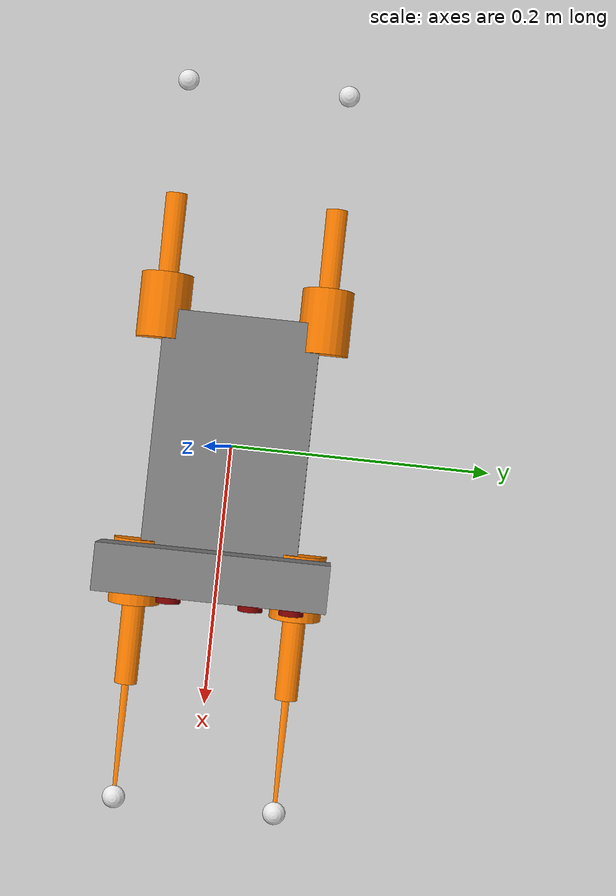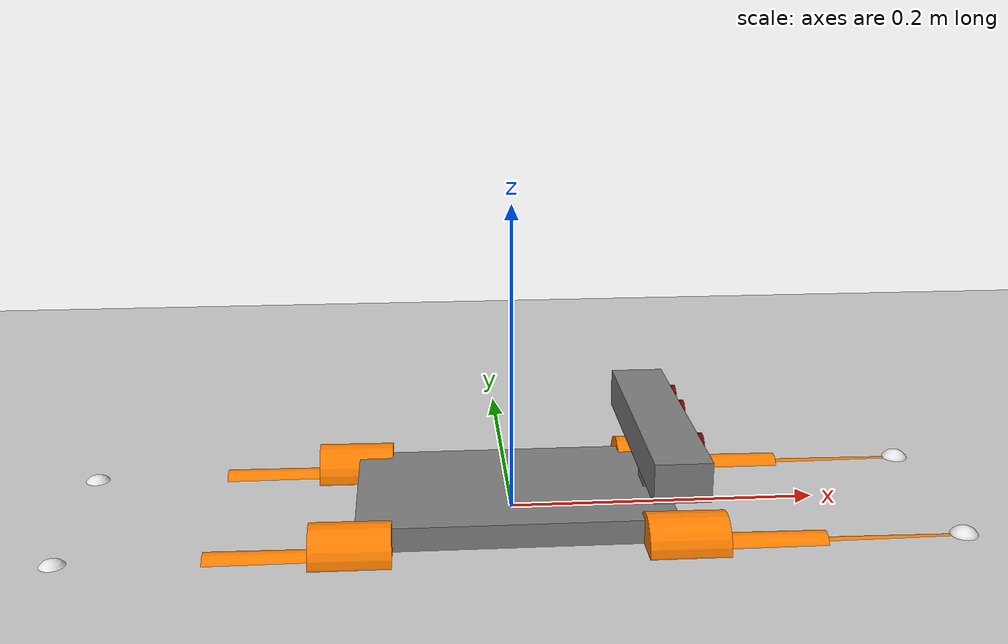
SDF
<?xml version="1.0" ?>
<sdf version="1.5">
  <world name="default">
  <physics type="ode">
    <max_step_size>0.001</max_step_size>
    <real_time_factor>1</real_time_factor>
    <real_time_update_rate>1000</real_time_update_rate>
    <max_contacts>1000</max_contacts>
    <simbody>
      <min_step_size>0.0001</min_step_size>
      <accuracy>0.001</accuracy>
      <max_transient_velocity>0.01</max_transient_velocity>
      <contact>
        <stiffness>1e8</stiffness>
        <dissipation>100</dissipation>
        <plastic_coef_restitution>0.5</plastic_coef_restitution>
        <plastic_impact_velocity>0.5</plastic_impact_velocity>
        <static_friction>0.1</static_friction>
        <dynamic_friction>0.1</dynamic_friction>
        <viscous_friction>0</viscous_friction>
        <override_impact_capture_velocity>0.001</override_impact_capture_velocity>
        <override_stiction_transition_velocity>0.001</override_stiction_transition_velocity>
      </contact>
    </simbody>
    <bullet>
      <solver>
        <type>sequential_impulse</type>
        <min_step_size>1e-5</min_step_size>
        <iters>50</iters>
        <sor>1.3</sor>
      </solver>
      <constraints>
        <cfm>0.0</cfm>
        <erp>0.2</erp>
        <contact_surface_layer>0.001</contact_surface_layer>
        <split_impulse>1</split_impulse>
        <split_impulse_penetration_threshold>-0.01</split_impulse_penetration_threshold>
      </constraints>
    </bullet>
    <ode>
      <solver>
        <type>quick</type>
        <min_step_size>1e-6</min_step_size>
        <iters>100</iters>
        <sor>1.0</sor>
      </solver>
      <constraints>
        <cfm>0.0</cfm>
        <erp>0.6</erp>
        <contact_max_correcting_vel>1e2</contact_max_correcting_vel>
        <contact_surface_layer>1e-5</contact_surface_layer>
      </constraints>
    </ode>
  </physics>
    <!-- Ground -->
    <include>
      <uri>model://ground_plane</uri>
    </include>
    <!-- Links (Lynx) model -->
    <include>
      <uri>model://links</uri>
      <pose>0 0 0 0 0 0</pose>
    </include>
    <!-- A global light source -->
    <include>
      <uri>model://sun</uri>
    </include>
  </world>
</sdf>

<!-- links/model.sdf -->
<sdf version='1.5'>
  <model name='LINKS'>
    <plugin name="PacerPlugin" filename="libPacerGazeboPlugin.so"/>
    <pose>0 0 0.19 0 -0 0</pose>
    <link name='BODY0'>
      <pose>0 0 0 0 -0 0</pose>
      <inertial>
        <mass>2.6</mass>
        <inertia>
          <ixx>0.005833</ixx>
          <ixy>0.0</ixy>
          <ixz>-0.0</ixz>
          <iyy>0.003033</iyy>
          <iyz>-0.0</iyz>
          <izz>0.008633</izz>
        </inertia>
      </inertial>

      <visual name='Head'>
        <pose>0.095 0 0.05 0 -0 0</pose>
        <geometry>
          <box>
            <size>0.035 0.17 0.025</size>
          </box>
        </geometry>
        <material>
          <diffuse>0.5 0.5 0.5 1</diffuse>
        </material>
      </visual>
      <visual name='Neck'>
        <pose>0.095 0 0.025 0 -0 0</pose>
        <geometry>
          <box>
            <size>0.02 0.02 0.04</size>
          </box>
        </geometry>
        <material>
          <diffuse>0.5 0.5 0.5 1</diffuse>
        </material>
      </visual>
      <visual name='REye'>
        <pose>0.11 -0.03 0.05 0 1.571 0</pose>
        <geometry>
          <cylinder>
            <radius>0.009</radius>
            <length>0.015</length>
          </cylinder>
        </geometry>
        <material>
          <ambient>0.2 0.2 0.2 1</ambient>
          <diffuse>0.5 0 0 1</diffuse>
          <specular>0.1 0.1 0.1 1</specular>
          <emissive>0 0 0 0</emissive>
        </material>
      </visual>
      <visual name='LEye1'>
        <pose>0.11 0.03 0.05 0 1.571 0</pose>
        <geometry>
          <cylinder>
            <radius>0.009</radius>
            <length>0.015</length>
          </cylinder>
        </geometry>
        <material>
          <ambient>0.2 0.2 0.2 1</ambient>
          <diffuse>0.5 0 0 1</diffuse>
          <specular>0.1 0.1 0.1 1</specular>
          <emissive>0 0 0 0</emissive>
        </material>
      </visual>
      <visual name='LEye2'>
        <pose>0.11 0.06 0.05 0 1.571 0</pose>
        <geometry>
          <cylinder>
            <radius>0.009</radius>
            <length>0.015</length>
          </cylinder>
        </geometry>
        <material>
          <ambient>0.2 0.2 0.2 1</ambient>
          <diffuse>0.5 0 0 1</diffuse>
          <specular>0.1 0.1 0.1 1</specular>
          <emissive>0 0 0 0</emissive>
        </material>
      </visual>

      <visual name='BODY0_visual'>
        <geometry>
          <box>
            <size>0.20 0.12 0.03</size>
          </box>
        </geometry>
        <material>
          <ambient>0.5 0.5 0.5 1</ambient>
          <diffuse>0.5 0.5 0.5 1</diffuse>
          <specular>0.5 0.5 0.5 0</specular>
          <emissive>0.5 0.5 0.5 0</emissive>
        </material>
      </visual>

      <collision name='BODY0_collision'>
        <geometry>
          <box>
            <size>0.20 0.12 0.05</size>
          </box>
        </geometry>
      </collision>

    </link>

  <!-- =============================== LF leg =============================== -->
    <joint name='LF_X_1' type='revolute'>
      <pose>-0.025 0 0 0 0 0</pose>
      <parent>BODY0</parent>
      <child>LF_LEG_1</child>
      <axis>
        <xyz>1 0 0</xyz>
        <limit>
          <lower>-1e6</lower>
          <upper>1e6</upper>
        </limit>
        <dynamics/>
      </axis>

    </joint>

    <link name='LF_LEG_1'>
      <pose>0.1025 0.0625 0 0 0 0</pose>
      <inertial>
        <mass>0.10</mass>
        <inertia>
          <ixx>1.5e-5</ixx>
          <ixy>0.0</ixy>
          <ixz>-0.0</ixz>
          <iyy>2.833e-5</iyy>
          <iyz>-0.0</iyz>
          <izz>2.833e-5</izz>
        </inertia>
      </inertial>

      <visual name='leg1_visual'>
        <pose>0 0 0 0 1.579 0</pose>
        <geometry>
          <cylinder>
            <radius>0.02</radius>
            <length>0.05</length>
          </cylinder>
        </geometry>
        <material>
          <ambient>0.2 0.2 0.2 1</ambient>
          <diffuse>1 0.5 0   1</diffuse>
          <specular>0.1 0.1 0.1 1</specular>
          <emissive>0 0 0 0</emissive>
        </material>
      </visual>

      <collision name='LF_1_collision'>
        <pose>0 0 0 0 1.579 0</pose>
        <geometry>
          <cylinder>
            <radius>0.02</radius>
            <length>0.05</length>
          </cylinder>
        </geometry>
        <surface>
          <restitution_coefficient>0</restitution_coefficient>
          <friction>
            <ode>
              <mu>100</mu>
              <mu2>100</mu2>
            </ode>
          </friction>
        </surface>
      </collision>

      <sensor name='LF_1_contact' type='contact'>
        <contact>
          <collision>LF_1_collision</collision>
        </contact>
        <update_rate>1000</update_rate>
      </sensor>
    </link>

    <joint name='LF_Y_2' type='revolute'>
      <pose>-0.0385 0 0 0 0 0</pose>
      <parent>LF_LEG_1</parent>
      <child>LF_LEG_2</child>
      <axis>
        <xyz>0 1 0</xyz>
        <limit>
          <lower>-1e6</lower>
          <upper>1e6</upper>
        </limit>
        <dynamics/>
      </axis>
    </joint>

    <link name='LF_LEG_2'>
      <pose>0.141 0.0625 -0.005 0 0 0</pose>
      <inertial>
        <mass>0.10</mass>
        <inertia>
          <ixx>1.083e-5</ixx>
          <ixy>0.0</ixy>
          <ixz>-0.0</ixz>
          <iyy>0.0001233</iyy>
          <iyz>-0.0</iyz>
          <izz>0.001275</izz>
        </inertia>
      </inertial>

      <visual name='leg2_visual'>
        <pose>0 0 0 0 1.579 0</pose>
        <geometry>
          <cylinder>
            <radius>0.01</radius>
            <length>0.1</length>
          </cylinder>
        </geometry>
        <material>
          <ambient>0.2 0.2 0.2 1</ambient>
          <diffuse>1 0.5 0   1</diffuse>
          <specular>0.1 0.1 0.1 1</specular>
          <emissive>0 0 0 0</emissive>
        </material>
      </visual>

      <collision name='LF_2_collision'>
        <pose>0 0 0 0 1.579 0</pose>
        <geometry>
          <cylinder>
            <radius>0.01</radius>
            <length>0.1</length>
          </cylinder>
        </geometry>
        <surface>
          <restitution_coefficient>0</restitution_coefficient>
          <friction>
            <ode>
              <mu>100</mu>
              <mu2>100</mu2>
            </ode>
          </friction>
        </surface>
      </collision>

      <sensor name='LF_2_contact' type='contact'>
        <contact>
          <collision>LF_2_collision</collision>
        </contact>
        <update_rate>1000</update_rate>
      </sensor>

    </link>

    <joint name='LF_Y_3' type='revolute'>
      <pose>-0.1 0 0 0 0 0</pose>
      <parent>LF_LEG_2</parent>
      <child>LF_FOOT</child>
      <axis>
        <xyz>0 1 0</xyz>
        <limit>
          <lower>-1e6</lower>
          <upper>1e6</upper>
        </limit>
        <dynamics/>
      </axis>
    </joint>

    <link name='LF_FOOT'>
      <pose>0.2795 0.0625 -0.005 0 0 0</pose>
      <inertial>
        <pose>-0.05 0 0 0 0 0</pose>
        <mass>0.10</mass>
        <inertia>
          <ixx>5e-7</ixx>
          <ixy>-1.215e-10</ixy>
          <ixz>-0.0</ixz>
          <iyy>3.358e-5</iyy>
          <iyz>-0.0</iyz>
          <izz>3.358e-5</izz>
        </inertia>
      </inertial>

      <visual name='leg3_visual'>
        <pose>-0.05 0 0 0 1.579 0</pose>
        <geometry>
          <cylinder>
            <radius>0.005</radius>
            <length>0.1</length>
          </cylinder>
        </geometry>
        <material>
          <ambient>0.2 0.2 0.2 1</ambient>
          <diffuse>1 0.5 0   1</diffuse>
          <specular>0.1 0.1 0.1 1</specular>
          <emissive>0 0 0 0</emissive>
        </material>
      </visual>

      <collision name='LF_3_collision'>
        <pose>-0.05 0 0 0 1.579 0</pose>
        <geometry>
          <cylinder>
            <radius>0.005</radius>
            <length>0.1</length>
          </cylinder>
        </geometry>
        <surface>
          <restitution_coefficient>0</restitution_coefficient>
          <friction>
            <ode>
              <mu>100</mu>
              <mu2>100</mu2>
            </ode>
          </friction>
        </surface>
      </collision>

      <sensor name='LF_3_contact' type='contact'>
        <contact>
          <collision>LF_3_collision</collision>
        </contact>
        <update_rate>1000</update_rate>
      </sensor>

      <visual name='LF_FOOT_visual'>
        <pose>0 0 0 0 0 0</pose>
        <geometry>
          <sphere>
            <radius>0.01</radius>
          </sphere>
        </geometry>
        <material>
          <ambient>0.2 0.2 0.2 1</ambient>
          <diffuse>0.9 0.9 0.9 1</diffuse>
          <specular>0.1 0.1 0.1 1</specular>
          <emissive>0 0 0 0</emissive>
        </material>
      </visual>

      <collision name='LF_FOOT_collision'>
        <pose>0 0 0 0 0 0</pose>
        <geometry>
          <sphere>
            <radius>0.01</radius>
          </sphere>
        </geometry>
        <surface>
          <restitution_coefficient>0</restitution_coefficient>
          <friction>
            <ode>
              <mu>100</mu>
              <mu2>100</mu2>
            </ode>
          </friction>
        </surface>
      </collision>

      <sensor name='LF_FOOT_contact' type='contact'>
        <contact>
          <collision>LF_FOOT_collision</collision>
        </contact>
        <update_rate>1000</update_rate>
      </sensor>
    </link>
    <!-- =============================== RF leg =============================== -->
    <joint name='RF_X_1' type='revolute'>
      <pose>-0.025 0 0 0 0 0</pose>
      <parent>BODY0</parent>
      <child>RF_LEG_1</child>
      <axis>
        <xyz>1 0 0</xyz>
        <limit>
          <lower>-1e6</lower>
          <upper>1e6</upper>
        </limit>
        <dynamics/>
      </axis>

    </joint>

    <link name='RF_LEG_1'>
      <pose>0.1025 -0.0625 0 0 0 0</pose>
      <inertial>
        <mass>0.10</mass>
        <inertia>
          <ixx>1.5e-5</ixx>
          <ixy>0.0</ixy>
          <ixz>-0.0</ixz>
          <iyy>2.833e-5</iyy>
          <iyz>-0.0</iyz>
          <izz>2.833e-5</izz>
        </inertia>
      </inertial>

      <visual name='leg1_visual'>
        <pose>0 0 0 0 1.579 0</pose>
        <geometry>
          <cylinder>
            <radius>0.02</radius>
            <length>0.05</length>
          </cylinder>
        </geometry>
        <material>
          <ambient>0.2 0.2 0.2 1</ambient>
          <diffuse>1 0.5 0   1</diffuse>
          <specular>0.1 0.1 0.1 1</specular>
          <emissive>0 0 0 0</emissive>
        </material>
      </visual>

      <collision name='RF_1_collision'>
        <pose>0 0 0 0 1.579 0</pose>
        <geometry>
          <cylinder>
            <radius>0.02</radius>
            <length>0.05</length>
          </cylinder>
        </geometry>
        <surface>
          <restitution_coefficient>0</restitution_coefficient>
          <friction>
            <ode>
              <mu>100</mu>
              <mu2>100</mu2>
            </ode>
          </friction>
        </surface>
      </collision>

      <sensor name='RF_1_contact' type='contact'>
        <contact>
          <collision>RF_1_collision</collision>
        </contact>
        <update_rate>1000</update_rate>
      </sensor>
    </link>

    <joint name='RF_Y_2' type='revolute'>
      <pose>-0.0385 0 0 0 0 0</pose>
      <parent>RF_LEG_1</parent>
      <child>RF_LEG_2</child>
      <axis>
        <xyz>0 -1 0</xyz>
        <limit>
          <lower>-1e6</lower>
          <upper>1e6</upper>
        </limit>
        <dynamics/>
      </axis>
    </joint>

    <link name='RF_LEG_2'>
      <pose>0.141 -0.0625 -0.005 0 0 0</pose>
      <inertial>
        <mass>0.10</mass>
        <inertia>
          <ixx>1.083e-5</ixx>
          <ixy>0.0</ixy>
          <ixz>-0.0</ixz>
          <iyy>0.0001233</iyy>
          <iyz>-0.0</iyz>
          <izz>0.001275</izz>
        </inertia>
      </inertial>

      <visual name='leg2_visual'>
        <pose>0 0 0 0 1.579 0</pose>
        <geometry>
          <cylinder>
            <radius>0.01</radius>
            <length>0.1</length>
          </cylinder>
        </geometry>
        <material>
          <ambient>0.2 0.2 0.2 1</ambient>
          <diffuse>1 0.5 0   1</diffuse>
          <specular>0.1 0.1 0.1 1</specular>
          <emissive>0 0 0 0</emissive>
        </material>
      </visual>

      <collision name='RF_2_collision'>
        <pose>0 0 0 0 1.579 0</pose>
        <geometry>
          <cylinder>
            <radius>0.01</radius>
            <length>0.1</length>
          </cylinder>
        </geometry>
        <surface>
          <restitution_coefficient>0</restitution_coefficient>
          <friction>
            <ode>
              <mu>100</mu>
              <mu2>100</mu2>
            </ode>
          </friction>
        </surface>
      </collision>

      <sensor name='RF_2_contact' type='contact'>
        <contact>
          <collision>RF_2_collision</collision>
        </contact>
        <update_rate>1000</update_rate>
      </sensor>

    </link>

    <joint name='RF_Y_3' type='revolute'>
      <pose>-0.1 0 0 0 0 0</pose>
      <parent>RF_LEG_2</parent>
      <child>RF_FOOT</child>
      <axis>
        <xyz>0 -1 0</xyz>
        <limit>
          <lower>-1e6</lower>
          <upper>1e6</upper>
        </limit>
        <dynamics/>
      </axis>
    </joint>

    <link name='RF_FOOT'>
      <pose>0.2795 -0.0625 -0.005 0 0 0</pose>
      <inertial>
        <pose>-0.05 0 0 0 0 0</pose>
        <mass>0.10</mass>
        <inertia>
          <ixx>5e-7</ixx>
          <ixy>-1.215e-10</ixy>
          <ixz>-0.0</ixz>
          <iyy>3.358e-5</iyy>
          <iyz>-0.0</iyz>
          <izz>3.358e-5</izz>
        </inertia>
      </inertial>

      <visual name='leg3_visual'>
        <pose>-0.05 0 0 0 1.579 0</pose>
        <geometry>
          <cylinder>
            <radius>0.005</radius>
            <length>0.1</length>
          </cylinder>
        </geometry>
        <material>
          <ambient>0.2 0.2 0.2 1</ambient>
          <diffuse>1 0.5 0   1</diffuse>
          <specular>0.1 0.1 0.1 1</specular>
          <emissive>0 0 0 0</emissive>
        </material>
      </visual>

      <collision name='RF_3_collision'>
        <pose>-0.05 0 0 0 1.579 0</pose>
        <geometry>
          <cylinder>
            <radius>0.005</radius>
            <length>0.1</length>
          </cylinder>
        </geometry>
        <surface>
          <restitution_coefficient>0</restitution_coefficient>
          <friction>
            <ode>
              <mu>100</mu>
              <mu2>100</mu2>
            </ode>
          </friction>
        </surface>
      </collision>

      <sensor name='RF_3_contact' type='contact'>
        <contact>
          <collision>RF_3_collision</collision>
        </contact>
        <update_rate>1000</update_rate>
      </sensor>

      <visual name='RF_FOOT_visual'>
        <pose>0 0 0 0 0 0</pose>
        <geometry>
          <sphere>
            <radius>0.01</radius>
          </sphere>
        </geometry>
        <material>
          <ambient>0.2 0.2 0.2 1</ambient>
          <diffuse>0.9 0.9 0.9 1</diffuse>
          <specular>0.1 0.1 0.1 1</specular>
          <emissive>0 0 0 0</emissive>
        </material>
      </visual>

      <collision name='RF_FOOT_collision'>
        <pose>0 0 0 0 0 0</pose>
        <geometry>
          <sphere>
            <radius>0.01</radius>
          </sphere>
        </geometry>
        <surface>
          <restitution_coefficient>0</restitution_coefficient>
          <friction>
            <ode>
              <mu>100</mu>
              <mu2>100</mu2>
            </ode>
          </friction>
        </surface>
      </collision>

      <sensor name='RF_FOOT_contact' type='contact'>
        <contact>
          <collision>RF_FOOT_collision</collision>
        </contact>
        <update_rate>1000</update_rate>
      </sensor>
    </link>
    <!-- =============================== LH leg =============================== -->
    <joint name='LH_X_1' type='revolute'>
      <pose>0.025 0 0 0 0 0</pose>
      <parent>BODY0</parent>
      <child>LH_LEG_1</child>
      <axis>
        <xyz>-1 0 0</xyz>
        <limit>
          <lower>-1e6</lower>
          <upper>1e6</upper>
        </limit>
        <dynamics/>
      </axis>

    </joint>

    <link name='LH_LEG_1'>
      <pose>-0.1025 0.0625 0 0 0 0</pose>
      <inertial>
        <mass>0.10</mass>
        <inertia>
          <ixx>1.5e-5</ixx>
          <ixy>0.0</ixy>
          <ixz>-0.0</ixz>
          <iyy>2.833e-5</iyy>
          <iyz>-0.0</iyz>
          <izz>2.833e-5</izz>
        </inertia>
      </inertial>

      <visual name='leg1_visual'>
        <pose>0 0 0 0 1.579 0</pose>
        <geometry>
          <cylinder>
            <radius>0.02</radius>
            <length>0.05</length>
          </cylinder>
        </geometry>
        <material>
          <ambient>0.2 0.2 0.2 1</ambient>
          <diffuse>1 0.5 0   1</diffuse>
          <specular>0.1 0.1 0.1 1</specular>
          <emissive>0 0 0 0</emissive>
        </material>
      </visual>

      <collision name='LH_1_collision'>
        <pose>0 0 0 0 1.579 0</pose>
        <geometry>
          <cylinder>
            <radius>0.02</radius>
            <length>0.05</length>
          </cylinder>
        </geometry>
        <surface>
          <restitution_coefficient>0</restitution_coefficient>
          <friction>
            <ode>
              <mu>100</mu>
              <mu2>100</mu2>
            </ode>
          </friction>
        </surface>
      </collision>

      <sensor name='LH_1_contact' type='contact'>
        <contact>
          <collision>LH_1_collision</collision>
        </contact>
        <update_rate>1000</update_rate>
      </sensor>
    </link>

    <joint name='LH_Y_2' type='revolute'>
      <pose>0.0385 0 0 0 0 0</pose>
      <parent>LH_LEG_1</parent>
      <child>LH_LEG_2</child>
      <axis>
        <xyz>0 1 0</xyz>
        <limit>
          <lower>-1e6</lower>
          <upper>1e6</upper>
        </limit>
        <dynamics/>
      </axis>
    </joint>

    <link name='LH_LEG_2'>
      <pose>-0.141 0.0625 -0.0065 0 0 0</pose>
      <inertial>
        <mass>0.10</mass>
        <inertia>
          <ixx>1.083e-5</ixx>
          <ixy>0.0</ixy>
          <ixz>-0.0</ixz>
          <iyy>0.0001233</iyy>
          <iyz>-0.0</iyz>
          <izz>0.001275</izz>
        </inertia>
      </inertial>

      <visual name='leg2_visual'>
        <pose>0 0 0 0 1.579 0</pose>
        <geometry>
          <cylinder>
            <radius>0.01</radius>
            <length>0.1</length>
          </cylinder>
        </geometry>
        <material>
          <ambient>0.2 0.2 0.2 1</ambient>
          <diffuse>1 0.5 0   1</diffuse>
          <specular>0.1 0.1 0.1 1</specular>
          <emissive>0 0 0 0</emissive>
        </material>
      </visual>

      <collision name='LH_2_collision'>
        <pose>0 0 0 0 1.579 0</pose>
        <geometry>
          <cylinder>
            <radius>0.01</radius>
            <length>0.1</length>
          </cylinder>
        </geometry>
        <surface>
          <restitution_coefficient>0</restitution_coefficient>
          <friction>
            <ode>
              <mu>100</mu>
              <mu2>100</mu2>
            </ode>
          </friction>
        </surface>
      </collision>

      <sensor name='LH_2_contact' type='contact'>
        <contact>
          <collision>LH_2_collision</collision>
        </contact>
        <update_rate>1000</update_rate>
      </sensor>

    </link>

    <joint name='LH_Y_3' type='revolute'>
      <pose>0.1 0 0 0 0 0</pose>
      <parent>LH_LEG_2</parent>
      <child>LH_FOOT</child>
      <axis>
        <xyz>0 1 0</xyz>
        <limit>
          <lower>-1e6</lower>
          <upper>1e6</upper>
        </limit>
        <dynamics/>
      </axis>
    </joint>

    <link name='LH_FOOT'>
      <pose>-0.2795 0.0625 -0.0065 0 0 0</pose>
      <inertial>
        <pose>-0.05 0 0 0 0 0</pose>
        <mass>0.10</mass>
        <inertia>
          <ixx>5e-7</ixx>
          <ixy>-1.215e-10</ixy>
          <ixz>-0.0</ixz>
          <iyy>3.358e-5</iyy>
          <iyz>-0.0</iyz>
          <izz>3.358e-5</izz>
        </inertia>
      </inertial>

      <visual name='leg3_visual'>
        <pose>0.05 0 0 0 1.579 0</pose>
        <geometry>
          <cylinder>
            <radius>0.005</radius>
            <length>0.1</length>
          </cylinder>
        </geometry>
        <material>
          <ambient>0.2 0.2 0.2 1</ambient>
          <diffuse>1 0.5 0   1</diffuse>
          <specular>0.1 0.1 0.1 1</specular>
          <emissive>0 0 0 0</emissive>
        </material>
      </visual>

      <collision name='LH_3_collision'>
        <pose>0.05 0 0 0 1.579 0</pose>
        <geometry>
          <cylinder>
            <radius>0.005</radius>
            <length>0.1</length>
          </cylinder>
        </geometry>
        <surface>
          <restitution_coefficient>0</restitution_coefficient>
          <friction>
            <ode>
              <mu>100</mu>
              <mu2>100</mu2>
            </ode>
          </friction>
        </surface>
      </collision>

      <sensor name='LH_3_contact' type='contact'>
        <contact>
          <collision>LH_3_collision</collision>
        </contact>
        <update_rate>1000</update_rate>
      </sensor>

      <visual name='LH_FOOT_visual'>
        <pose>0 0 0 0 0 0</pose>
        <geometry>
          <sphere>
            <radius>0.01</radius>
          </sphere>
        </geometry>
        <material>
          <ambient>0.2 0.2 0.2 1</ambient>
          <diffuse>0.9 0.9 0.9 1</diffuse>
          <specular>0.1 0.1 0.1 1</specular>
          <emissive>0 0 0 0</emissive>
        </material>
      </visual>

      <collision name='LH_FOOT_collision'>
        <pose>0 0 0 0 0 0</pose>
        <geometry>
          <sphere>
            <radius>0.01</radius>
          </sphere>
        </geometry>
        <surface>
          <restitution_coefficient>0</restitution_coefficient>
          <friction>
            <ode>
              <mu>100</mu>
              <mu2>100</mu2>
            </ode>
          </friction>
        </surface>
      </collision>

      <sensor name='LH_FOOT_contact' type='contact'>
        <contact>
          <collision>LH_FOOT_collision</collision>
        </contact>
        <update_rate>1000</update_rate>
      </sensor>
    </link>
    <!-- =============================== RH leg =============================== -->
    <joint name='RH_X_1' type='revolute'>
      <pose>0.025 0 0 0 0 0</pose>
      <parent>BODY0</parent>
      <child>RH_LEG_1</child>
      <axis>
        <xyz>-1 0 0</xyz>
        <limit>
          <lower>-1e6</lower>
          <upper>1e6</upper>
        </limit>
        <dynamics/>
      </axis>

    </joint>

    <link name='RH_LEG_1'>
      <pose>-0.1025 -0.0625 0 0 0 0</pose>
      <inertial>
        <mass>0.10</mass>
        <inertia>
          <ixx>1.5e-5</ixx>
          <ixy>0.0</ixy>
          <ixz>-0.0</ixz>
          <iyy>2.833e-5</iyy>
          <iyz>-0.0</iyz>
          <izz>2.833e-5</izz>
        </inertia>
      </inertial>

      <visual name='leg1_visual'>
        <pose>0 0 0 0 1.579 0</pose>
        <geometry>
          <cylinder>
            <radius>0.02</radius>
            <length>0.05</length>
          </cylinder>
        </geometry>
        <material>
          <ambient>0.2 0.2 0.2 1</ambient>
          <diffuse>1 0.5 0   1</diffuse>
          <specular>0.1 0.1 0.1 1</specular>
          <emissive>0 0 0 0</emissive>
        </material>
      </visual>

      <collision name='RH_1_collision'>
        <pose>0 0 0 0 1.579 0</pose>
        <geometry>
          <cylinder>
            <radius>0.02</radius>
            <length>0.05</length>
          </cylinder>
        </geometry>
        <surface>
          <restitution_coefficient>0</restitution_coefficient>
          <friction>
            <ode>
              <mu>100</mu>
              <mu2>100</mu2>
            </ode>
          </friction>
        </surface>
      </collision>

      <sensor name='RH_1_contact' type='contact'>
        <contact>
          <collision>RH_1_collision</collision>
        </contact>
        <update_rate>1000</update_rate>
      </sensor>
    </link>

    <joint name='RH_Y_2' type='revolute'>
      <pose>0.0385 0 0 0 0 0</pose>
      <parent>RH_LEG_1</parent>
      <child>RH_LEG_2</child>
      <axis>
        <xyz>0 -1 0</xyz>
        <limit>
          <lower>-1e6</lower>
          <upper>1e6</upper>
        </limit>
        <dynamics/>
      </axis>
    </joint>

    <link name='RH_LEG_2'>
      <pose>-0.141 -0.0625 -0.0065 0 0 0</pose>
      <inertial>
        <mass>0.10</mass>
        <inertia>
          <ixx>1.083e-5</ixx>
          <ixy>0.0</ixy>
          <ixz>-0.0</ixz>
          <iyy>0.0001233</iyy>
          <iyz>-0.0</iyz>
          <izz>0.001275</izz>
        </inertia>
      </inertial>

      <visual name='leg2_visual'>
        <pose>0 0 0 0 1.579 0</pose>
        <geometry>
          <cylinder>
            <radius>0.01</radius>
            <length>0.1</length>
          </cylinder>
        </geometry>
        <material>
          <ambient>0.2 0.2 0.2 1</ambient>
          <diffuse>1 0.5 0   1</diffuse>
          <specular>0.1 0.1 0.1 1</specular>
          <emissive>0 0 0 0</emissive>
        </material>
      </visual>

      <collision name='RH_2_collision'>
        <pose>0 0 0 0 1.579 0</pose>
        <geometry>
          <cylinder>
            <radius>0.01</radius>
            <length>0.1</length>
          </cylinder>
        </geometry>
        <surface>
          <restitution_coefficient>0</restitution_coefficient>
          <friction>
            <ode>
              <mu>100</mu>
              <mu2>100</mu2>
            </ode>
          </friction>
        </surface>
      </collision>

      <sensor name='RH_2_contact' type='contact'>
        <contact>
          <collision>RH_2_collision</collision>
        </contact>
        <update_rate>1000</update_rate>
      </sensor>

    </link>

    <joint name='RH_Y_3' type='revolute'>
      <pose>0.1 0 0 0 0 0</pose>
      <parent>RH_LEG_2</parent>
      <child>RH_FOOT</child>
      <axis>
        <xyz>0 -1 0</xyz>
        <limit>
          <lower>-1e6</lower>
          <upper>1e6</upper>
        </limit>
        <dynamics/>
      </axis>
    </joint>

    <link name='RH_FOOT'>
      <pose>-0.2795 -0.0625 -0.0065 0 0 0</pose>
      <inertial>
        <pose>-0.05 0 0 0 0 0</pose>
        <mass>0.10</mass>
        <inertia>
          <ixx>5e-7</ixx>
          <ixy>-1.215e-10</ixy>
          <ixz>-0.0</ixz>
          <iyy>3.358e-5</iyy>
          <iyz>-0.0</iyz>
          <izz>3.358e-5</izz>
        </inertia>
      </inertial>

      <visual name='leg3_visual'>
        <pose>0.05 0 0 0 1.579 0</pose>
        <geometry>
          <cylinder>
            <radius>0.005</radius>
            <length>0.1</length>
          </cylinder>
        </geometry>
        <material>
          <ambient>0.2 0.2 0.2 1</ambient>
          <diffuse>1 0.5 0   1</diffuse>
          <specular>0.1 0.1 0.1 1</specular>
          <emissive>0 0 0 0</emissive>
        </material>
      </visual>

      <collision name='RH_3_collision'>
        <pose>0.05 0 0 0 1.579 0</pose>
        <geometry>
          <cylinder>
            <radius>0.005</radius>
            <length>0.1</length>
          </cylinder>
        </geometry>
        <surface>
          <restitution_coefficient>0</restitution_coefficient>
          <friction>
            <ode>
              <mu>100</mu>
              <mu2>100</mu2>
            </ode>
          </friction>
        </surface>
      </collision>

      <sensor name='RH_3_contact' type='contact'>
        <contact>
          <collision>RH_3_collision</collision>
        </contact>
        <update_rate>1000</update_rate>
      </sensor>

      <visual name='RH_FOOT_visual'>
        <pose>0 0 0 0 0 0</pose>
        <geometry>
          <sphere>
            <radius>0.01</radius>
          </sphere>
        </geometry>
        <material>
          <ambient>0.2 0.2 0.2 1</ambient>
          <diffuse>0.9 0.9 0.9 1</diffuse>
          <specular>0.1 0.1 0.1 1</specular>
          <emissive>0 0 0 0</emissive>
        </material>
      </visual>

      <collision name='RH_FOOT_collision'>
        <pose>0 0 0 0 0 0</pose>
        <geometry>
          <sphere>
            <radius>0.01</radius>
          </sphere>
        </geometry>
        <surface>
          <restitution_coefficient>0</restitution_coefficient>
          <friction>
            <ode>
              <mu>100</mu>
              <mu2>100</mu2>
            </ode>
          </friction>
        </surface>
      </collision>

      <sensor name='RH_FOOT_contact' type='contact'>
        <contact>
          <collision>RH_FOOT_collision</collision>
        </contact>
        <update_rate>1000</update_rate>
      </sensor>
    </link>
  </model>
</sdf>
